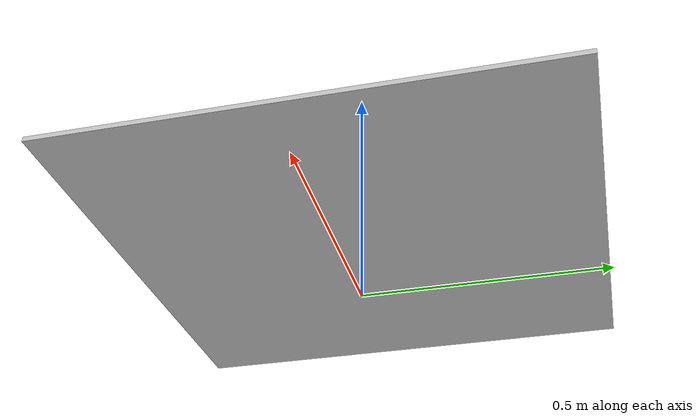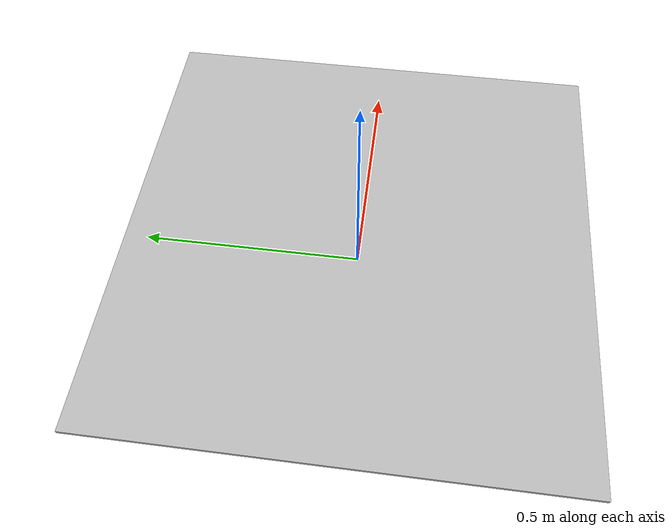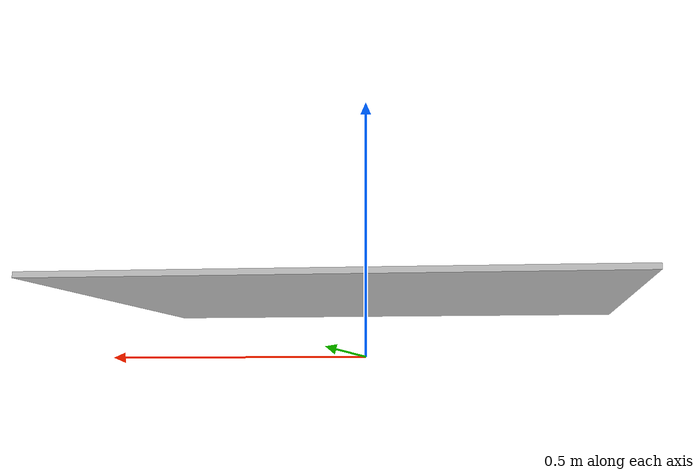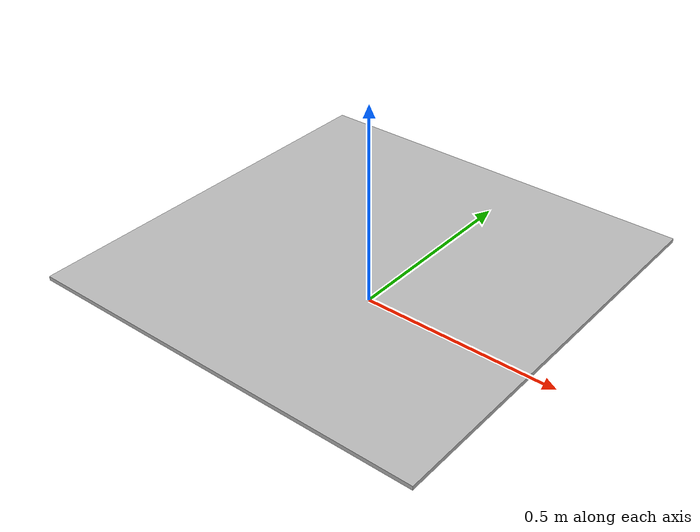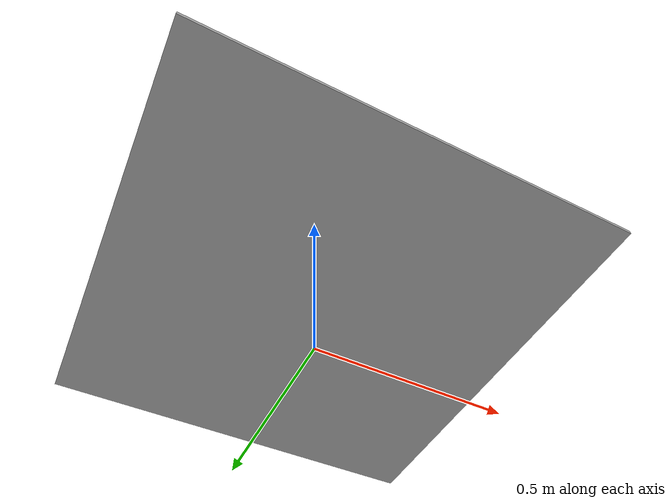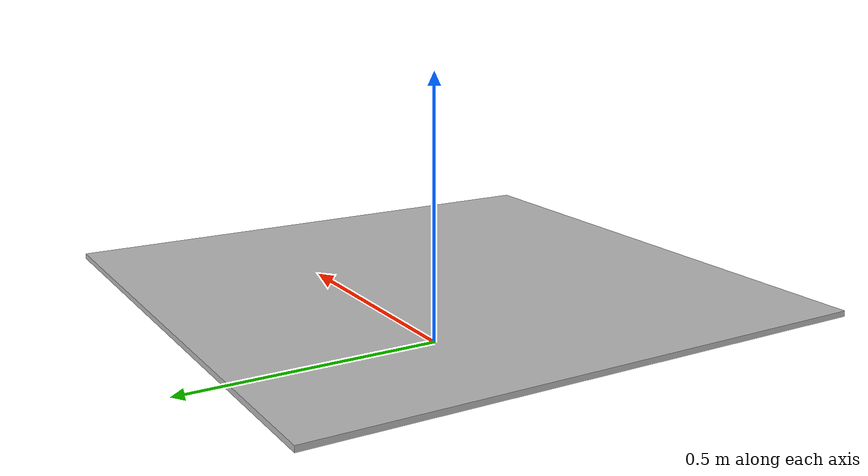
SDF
<?xml version='1.0'?>
<sdf version='1.4'>
  <model name="arucotag">
    <link name='link'>
      <pose>0 0 0.115 0 0 0</pose>
      <inertial>
        <mass>0.390</mass>
        <inertia>
          <ixx>0.00058</ixx>
          <ixy>0</ixy>
          <ixz>0</ixz>
          <iyy>0.00058</iyy>
          <iyz>0</iyz>
          <izz>0.00019</izz>
        </inertia>
      </inertial>
      <collision name='collision'>
        <geometry>
                <box>
                  <size>1 1 .01</size>
                </box>
        </geometry>
      </collision>

      <visual name='visual'>
        <geometry>
                <box>
                  <size>1 1 .01</size>
                </box>
        </geometry>

        <material>
          <script>
            <uri>model://arucotag/materials/scripts</uri>
            <uri>model://arucotag/materials/textures</uri>
            <name>Mark/Diffuse</name>
          </script>
        </material>
      </visual>
    </link>
  </model>
</sdf>
